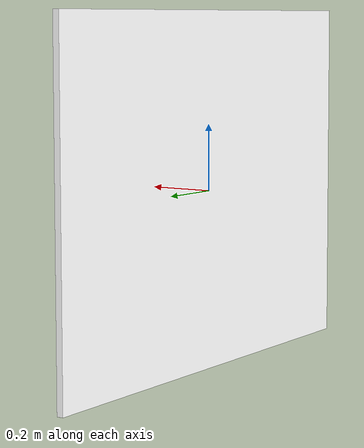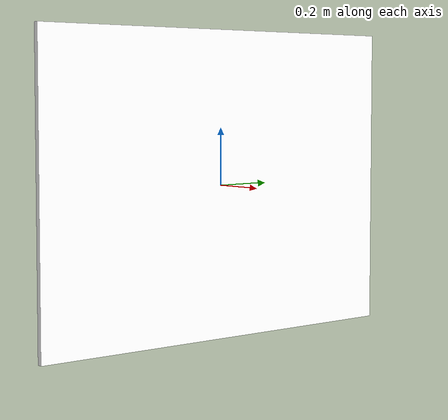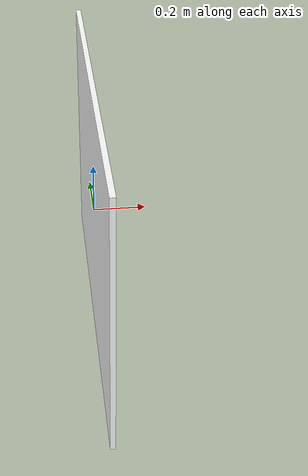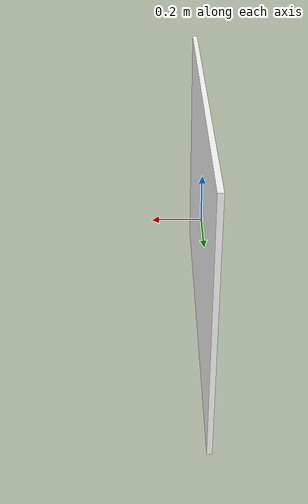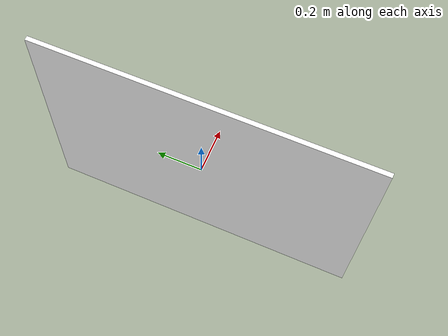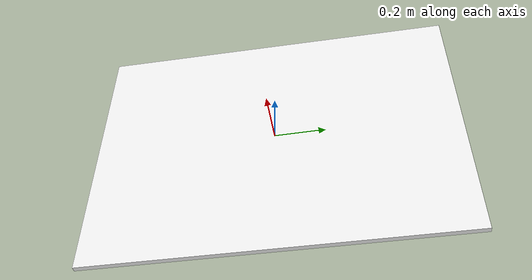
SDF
<?xml version="1.0" ?>
<sdf version="1.8">
  <model name="checkerboard_target">
    <static>true</static>

    <link name="target_link">
      <visual name="target_visual">
        <geometry>
          <box>
            <!-- thickness, width, height -->
            <size>0.02 1.44 1.08</size>
          </box>
        </geometry>

        <material>
          <ambient>1 1 1 1</ambient>
          <diffuse>1 1 1 1</diffuse>
          <specular>0.1 0.1 0.1 1</specular>
          <pbr>
            <metal>
              <albedo_map>file:///workspaces/project/src/calib_lab/models/checkerboard_target/materials/textures/checkerboard_10x7.png</albedo_map>
              <roughness>0.8</roughness>
              <metalness>0.0</metalness>
            </metal>
          </pbr>
        </material>
      </visual>

      <collision name="target_collision">
        <geometry>
          <box>
            <size>0.02 1.44 1.08</size>
          </box>
        </geometry>
      </collision>
    </link>
  </model>
</sdf>
